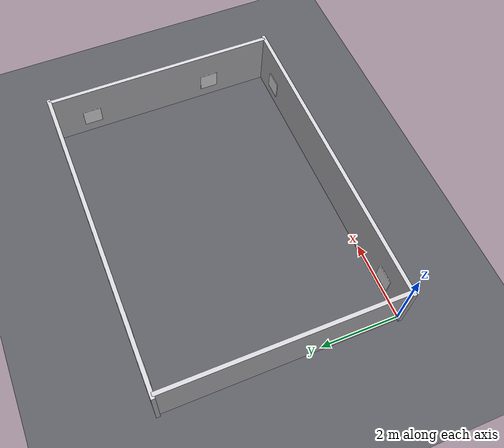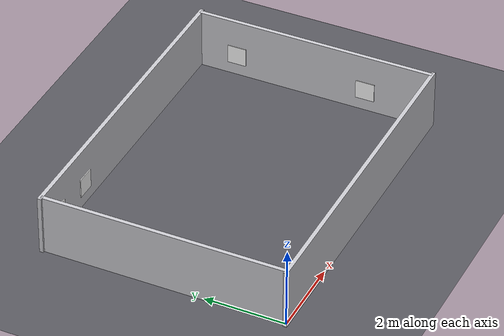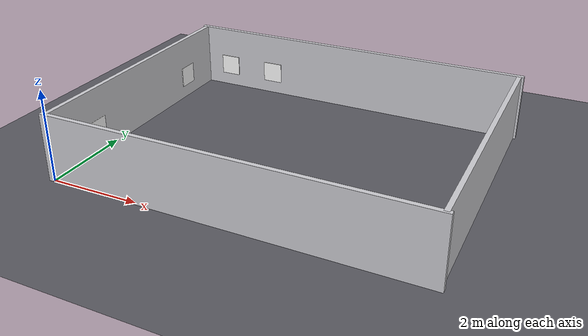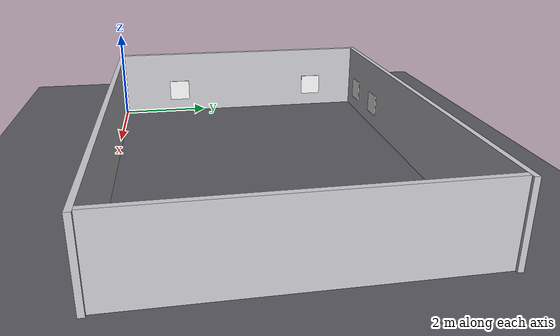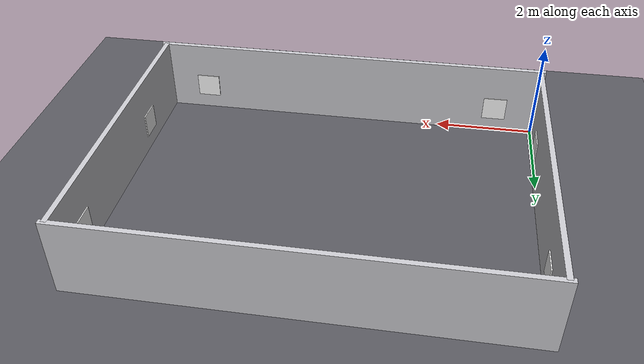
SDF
<?xml version="1.0" ?>
<sdf version="1.10">
  <world name="ar_room">
    <physics name="default" type="dart">
      <max_step_size>0.004</max_step_size>
      <real_time_factor>1.0</real_time_factor>
    </physics>

    <plugin filename="gz-sim-physics-system" name="gz::sim::systems::Physics"/>
    <plugin filename="gz-sim-user-commands-system" name="gz::sim::systems::UserCommands"/>
    <plugin filename="gz-sim-scene-broadcaster-system" name="gz::sim::systems::SceneBroadcaster"/>
    <plugin filename="gz-sim-sensors-system" name="gz::sim::systems::Sensors">
      <render_engine>ogre2</render_engine>
    </plugin>

    <scene>
      <ambient>0.6 0.6 0.6 1</ambient>
      <background>0.85 0.88 0.92 1</background>
      <grid>false</grid>
    </scene>

    <light type="directional" name="sun">
      <cast_shadows>true</cast_shadows>
      <pose>0 0 10 0 0 0</pose>
      <diffuse>0.9 0.9 0.9 1</diffuse>
      <specular>0.2 0.2 0.2 1</specular>
      <direction>-0.4 0.3 -0.9</direction>
    </light>
    <light type="point" name="lamp">
      <pose>4.00 3.00 2.00 0 0 0</pose>
      <diffuse>0.6 0.6 0.6 1</diffuse>
      <attenuation><range>30</range><linear>0.05</linear></attenuation>
    </light>

    <model name="ground">
      <static>true</static>
      <link name="link">
        <!-- centered under the room so the floor spans the whole room + margin -->
        <pose>4.000 3.000 0 0 0 0</pose>
        <collision name="c">
          <geometry><plane><normal>0 0 1</normal><size>12.0 10.0</size></plane></geometry>
        </collision>
        <visual name="v">
          <geometry><plane><normal>0 0 1</normal><size>12.0 10.0</size></plane></geometry>
          <material>
            <ambient>0.3 0.3 0.33 1</ambient>
            <diffuse>0.35 0.35 0.38 1</diffuse>
          </material>
        </visual>
      </link>
    </model>

    <model name="wall_south">
      <static>true</static>
      <link name="link">
        <pose>4.0000 0.0000 0.7500 0 0 0</pose>
        <collision name="c"><geometry><box><size>8.2000 0.1000 1.5000</size></box></geometry></collision>
        <visual name="v">
          <geometry><box><size>8.2000 0.1000 1.5000</size></box></geometry>
          <material>
            <ambient>0.8 0.8 0.82 1</ambient>
            <diffuse>0.8 0.8 0.82 1</diffuse>
            <specular>0.1 0.1 0.1 1</specular>
          </material>
        </visual>
      </link>
    </model>
    <model name="wall_north">
      <static>true</static>
      <link name="link">
        <pose>4.0000 6.0000 0.7500 0 0 0</pose>
        <collision name="c"><geometry><box><size>8.2000 0.1000 1.5000</size></box></geometry></collision>
        <visual name="v">
          <geometry><box><size>8.2000 0.1000 1.5000</size></box></geometry>
          <material>
            <ambient>0.8 0.8 0.82 1</ambient>
            <diffuse>0.8 0.8 0.82 1</diffuse>
            <specular>0.1 0.1 0.1 1</specular>
          </material>
        </visual>
      </link>
    </model>
    <model name="wall_west">
      <static>true</static>
      <link name="link">
        <pose>0.0000 3.0000 0.7500 0 0 0</pose>
        <collision name="c"><geometry><box><size>0.1000 6.0000 1.5000</size></box></geometry></collision>
        <visual name="v">
          <geometry><box><size>0.1000 6.0000 1.5000</size></box></geometry>
          <material>
            <ambient>0.8 0.8 0.82 1</ambient>
            <diffuse>0.8 0.8 0.82 1</diffuse>
            <specular>0.1 0.1 0.1 1</specular>
          </material>
        </visual>
      </link>
    </model>
    <model name="wall_east">
      <static>true</static>
      <link name="link">
        <pose>8.0000 3.0000 0.7500 0 0 0</pose>
        <collision name="c"><geometry><box><size>0.1000 6.0000 1.5000</size></box></geometry></collision>
        <visual name="v">
          <geometry><box><size>0.1000 6.0000 1.5000</size></box></geometry>
          <material>
            <ambient>0.8 0.8 0.82 1</ambient>
            <diffuse>0.8 0.8 0.82 1</diffuse>
            <specular>0.1 0.1 0.1 1</specular>
          </material>
        </visual>
      </link>
    </model>

    <include>
      <uri>model://apriltag_marker</uri>
      <name>ar_tag_0</name>
      <pose>0.8300 0.0600 0.5500 0 0 1.570796</pose>
    </include>
    <include>
      <uri>model://apriltag_marker</uri>
      <name>ar_tag_1</name>
      <pose>7.1300 0.0600 0.5500 0 0 1.570796</pose>
    </include>
    <include>
      <uri>model://apriltag_marker</uri>
      <name>ar_tag_2</name>
      <pose>0.7000 5.9400 0.5500 0 0 -1.570796</pose>
    </include>
    <include>
      <uri>model://apriltag_marker</uri>
      <name>ar_tag_3</name>
      <pose>1.9300 5.9400 0.5500 0 0 -1.570796</pose>
    </include>
    <include>
      <uri>model://apriltag_marker</uri>
      <name>ar_tag_4</name>
      <pose>0.0600 1.3800 0.5500 0 0 0.000000</pose>
    </include>
    <include>
      <uri>model://apriltag_marker</uri>
      <name>ar_tag_5</name>
      <pose>0.0600 4.8600 0.5500 0 0 0.000000</pose>
    </include>
    <include>
      <uri>model://apriltag_marker</uri>
      <name>ar_tag_6</name>
      <pose>7.9400 1.6600 0.5500 0 0 3.141593</pose>
    </include>
    <include>
      <uri>model://apriltag_marker</uri>
      <name>ar_tag_7</name>
      <pose>7.9400 5.0100 0.5500 0 0 3.141593</pose>
    </include>
  </world>
</sdf>

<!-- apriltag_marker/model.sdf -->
<!-- Regenerated by generate_world.py so size/texture match config/tag_map.yaml.
     The +X face carries the tag. -->
<sdf version="1.10">
  <model name="apriltag_marker">
    <static>true</static>
    <link name="link">
      <visual name="tag">
        <pose>0 0 0 0 0 0</pose>
        <geometry>
          <box><size>0.02 0.480 0.480</size></box>
        </geometry>
        <material>
          <ambient>1 1 1 1</ambient>
          <diffuse>1 1 1 1</diffuse>
          <specular>0.05 0.05 0.05 1</specular>
          <pbr>
            <metal>
              <albedo_map>materials/textures/tag36h11_0.png</albedo_map>
              <emissive_map>materials/textures/tag36h11_0.png</emissive_map>
              <metalness>0.0</metalness>
              <roughness>0.95</roughness>
            </metal>
          </pbr>
        </material>
      </visual>
    </link>
  </model>
</sdf>
